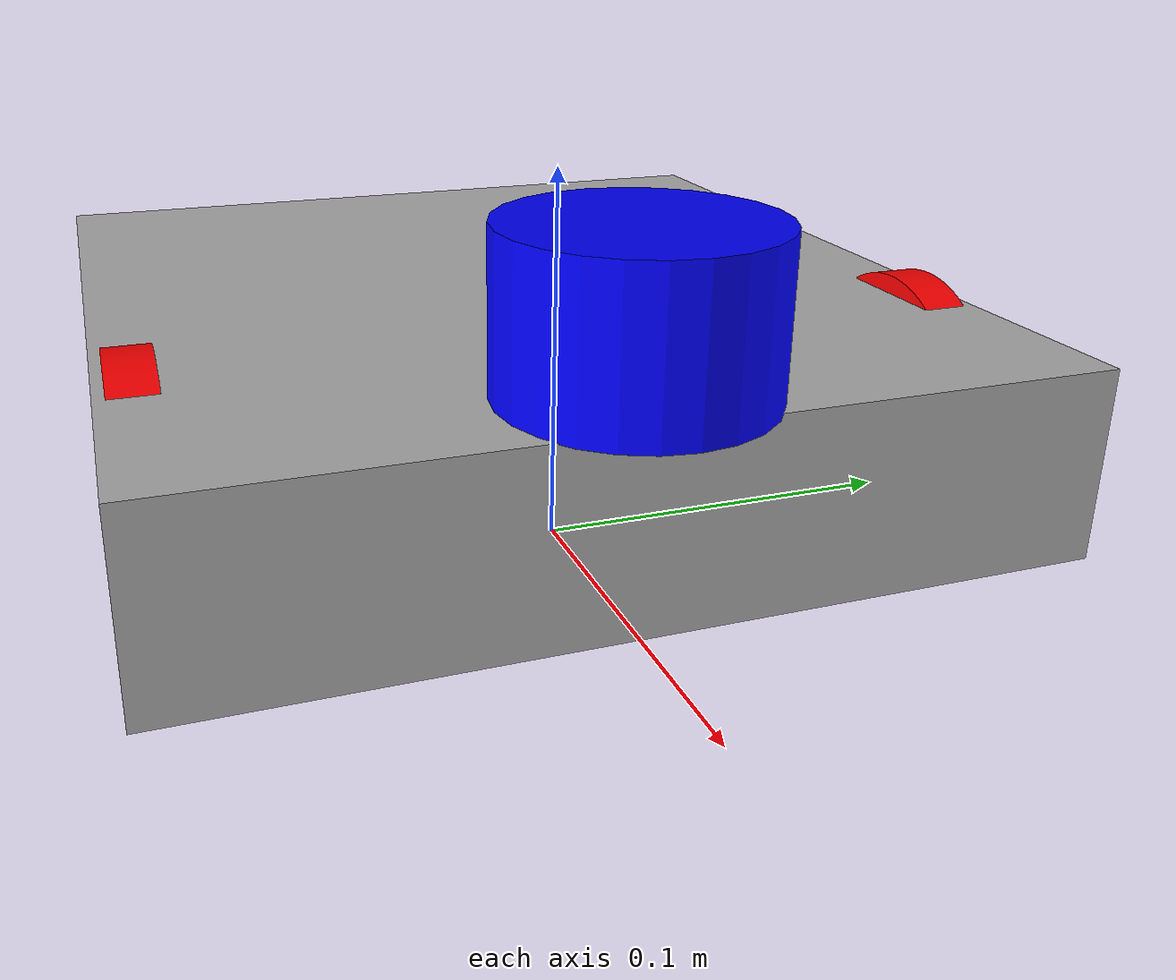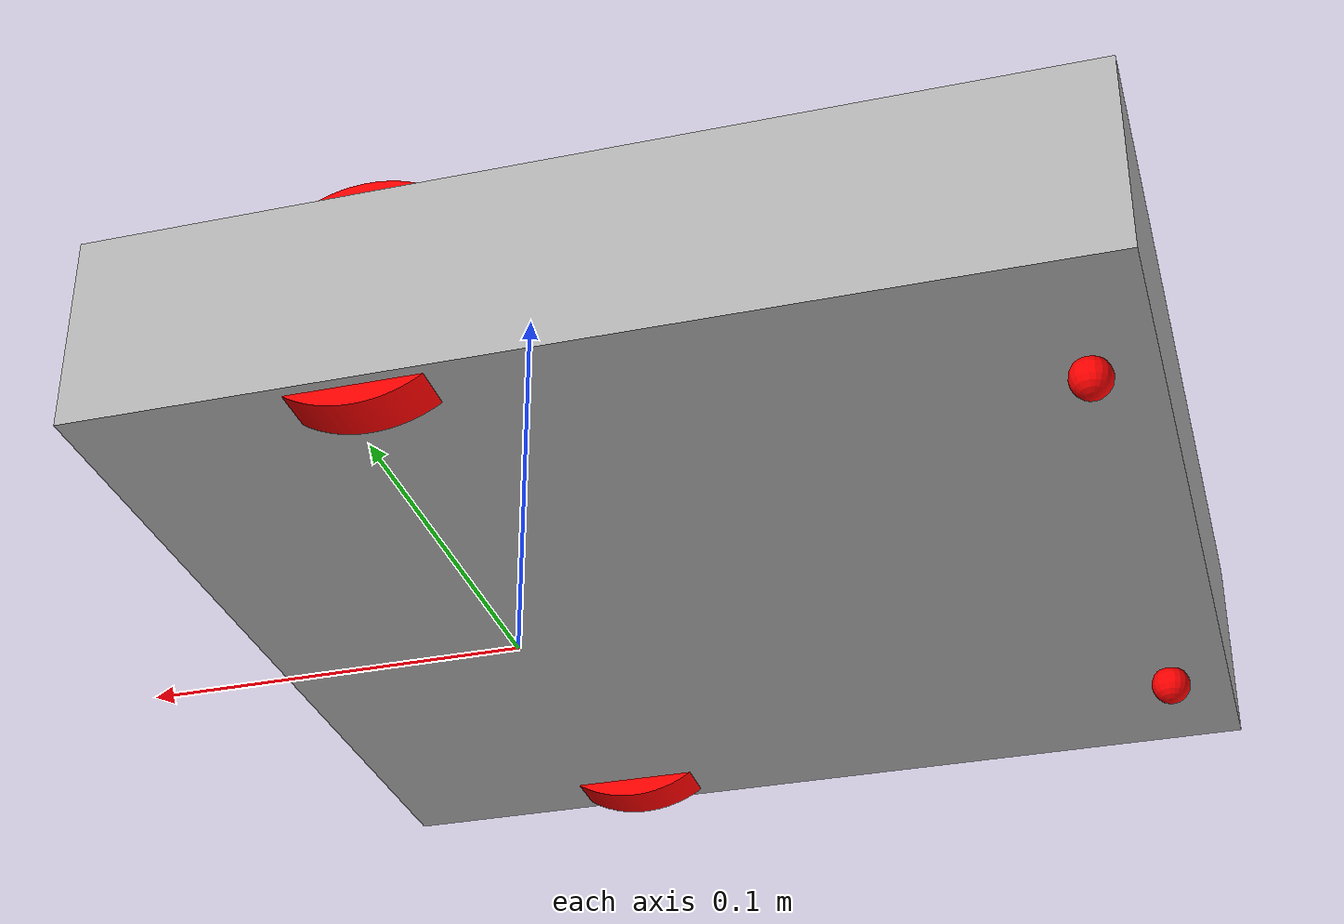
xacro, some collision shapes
<?xml version="1.0"?>
<robot name="F11Robot" xmlns:xacro="http://ros.org/wiki/xacro">
	<xacro:include filename="$(find F11Robo)/xacro/lidar.xacro" />
	<xacro:include filename="$(find F11Robo)/xacro/imu.xacro" />

	<material name="gray">
		<color rgba="0.7 0.7 0.7 2.5"/>
	</material>
	<material name="red">
		<color rgba="1.0 0.0 0.0 2.5"/>
	</material>
	<material name="blue">
		<color rgba="0.0 0.0 1.0 2.5"/>
	</material>

	<xacro:macro name="wheel_macro" params="parent prefix xyz deg　*joint_axis">
		<joint name="${prefix}_joint" type="continuous">
			<origin xyz="${xyz}" rpy="0 0 ${radians(deg)}"/>
			<parent link="${parent}"/>
			<child  link="${prefix}_link"/>
			<insert_block name="joint_axis"/>
		</joint>
		<transmission name="${prefix}_trans">
			<type>transmission_interface/SimpleTransmission</type>
			<joint name="${prefix}_joint">
				<hardwareInterface>hardware_interface/VelocityJointInterface</hardwareInterface>
			</joint>
			<actuator name="${prefix}_motor">
				<hardwareInterface>hardware_interface/VelocityJointInterface</hardwareInterface>
				<mechanismReduction>1</mechanismReduction>
			</actuator>
		</transmission>
		<link name="${prefix}_link">
			<inertial>
				<origin xyz="0 0 0" rpy="0 0 0"/>
				<mass value="0.2"/>
				<inertia ixx="0.0001" ixy="0.0" ixz="0.0" iyy="0.0001" iyz="0.0" izz="0.0001"/>
			</inertial>
			<visual>
				<origin xyz="0 0 0" rpy="0 0 0"/>
				<geometry>
					<mesh filename="package://F11Robo/stl/Robo_wheel.stl"/>
				</geometry>
				<material name="red"/>
			</visual>
			<collision>
				<origin xyz="0 0 0" rpy="${radians(90)} 0 0"/>
				<geometry>
					<cylinder radius="0.03336" length="0.011" />
				</geometry>
			</collision>
		</link>
		<gazebo reference="${prefix}_link">
			<material>Gazebo/Red</material>
			<mu1 value="3.0" />
			<mu2 value="3.0" />
			<kp value="50000" />
			<kd value="10" />
		</gazebo>
	</xacro:macro>

	<xacro:macro name="ball_macro" params="prefix xyz">
		<joint name="${prefix}_joint" type="fixed">
			<origin xyz="${xyz}" rpy="0 0 0"/>
			<parent link="base_link"/>
			<child  link="${prefix}_link"/>
		</joint>
		<link name="${prefix}_link">
			<visual>
				<origin xyz="0 0 0" rpy="0 0 0" />
				<geometry>
					<sphere radius="0.005" />
				</geometry>
				<material name="red"/>
			</visual>
			<collision>
				<origin xyz="0 0 0" rpy="0 0 0" />
				<geometry>
					<sphere radius="0.005" />
				</geometry>
				<material name="red" />
			</collision>
		</link>
		<gazebo reference="${prefix}_link">
			<material>Gazebo/Red</material>
			<mu1 value="0.0" />
			<mu2 value="0.0" />
			<mass value="0.1" />
			<inertia ixx="0.0001" ixy="0.0" ixz="0.0" iyy="0.0001" iyz="0.0" izz="0.0001"/>
		</gazebo>
	</xacro:macro>

	<link name="base_link"/>

	<joint name="body_joint" type="fixed">
		<parent link="base_link"/>
		<child  link="body_link"/>
		<origin xyz="0 0 0.0033" rpy="0 0 0"/>
	</joint>
	<link name="body_link">
		<inertial>
			<origin xyz="-0.05 0 0.03" rpy="0 0 0" />
			<mass value="1.0"/>
			<inertia ixx="0.001" ixy="0.0" ixz="0.0" iyy="0.001" iyz="0.0" izz="0.001"/>
		</inertial>
		<visual>
			<origin xyz="0 0 0" rpy="0 0 0" />
			<geometry>
				<mesh filename="package://F11Robo/stl/Robo_body.stl"/>
			</geometry>
			<material name="gray" />
		</visual>
		<collision>
			<origin xyz="-0.05 0 0.03" rpy="0 0 0" />
			<geometry>
				<box size="0.24 0.23 0.05" />
			</geometry>
		</collision>
	</link>
	<gazebo reference="body_link">
		<material>Gazebo/Gray</material>
		<mu1>0.05</mu1>
		<mu2>0.05</mu2>
	</gazebo>

	<xacro:wheel_macro prefix="left_wheel"  parent="base_link" xyz="0 0.1 0.03335" deg="180">
		<axis xyz="0 -1 0"/>
	</xacro:wheel_macro>
	<xacro:wheel_macro prefix="right_wheel" parent="base_link" xyz="0 -0.1 0.03335" deg="0">
		<axis xyz="0 1 0"/>
	</xacro:wheel_macro>

	<xacro:ball_macro prefix="left_ball" xyz="-0.155 0.0755 0.005"/>
	<xacro:ball_macro prefix="right_ball" xyz="-0.155 -0.0755 0.005"/>

	<xacro:laser_macro prefix="laser" parent="base_link" xyz="0.05 0 0.078"/>
	<xacro:imu_macro prefix="imu" parent="base_link" xyz="-0.152 0 0.05"/>

	<gazebo>
		<plugin name="gazebo_ros_control" filename="libgazebo_ros_control.so">
		<robotNamespace>/F11Robo</robotNamespace>
		<robotSimType>gazebo_ros_control/DefaultRobotHWSim</robotSimType>
		<legacyModeNS>true</legacyModeNS>
		</plugin>
	</gazebo>
	<gazebo>
		<plugin name="ground_truth" filename="libgazebo_ros_p3d.so">
		<frameName>world</frameName>
		<bodyName>base_link</bodyName>
		<topicName>/tracker</topicName>
		<updateRate>10.0</updateRate>
		</plugin>
	</gazebo>
</robot>

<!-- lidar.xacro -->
<robot name="F11Robot" xmlns:xacro="http://ros.org/wiki/xacro">
	<xacro:macro name="laser_macro" params="parent prefix xyz">
		<joint name="${prefix}_joint" type="fixed">
		<parent link="${parent}"/>
		<child  link="${prefix}_link"/>
		<origin xyz="${xyz}" rpy="0 0 0"/>
		</joint>
		<link name="${prefix}_link">
		<visual>
			<origin xyz="0 0 0" rpy="0 0 0" />
			<geometry>
			<cylinder radius="0.0329" length="0.04" />
			</geometry>
			<material name="blue" />
		</visual>
		<collision>
			<origin xyz="0 0 0" rpy="0 0 0"/>
			<geometry>
			<cylinder radius="0.0329" length="0.04" />
			</geometry>
		</collision>
		</link>
		<gazebo reference="${prefix}_link">
		<material>Gazebo/Blue</material>
		<sensor type="ray" name="${prefix}">
			<pose>0 0 0 0 0 0</pose>
			<visualize>false</visualize>
			<update_rate>10</update_rate>
			<ray>
			<scan>
				<horizontal>
				<samples>400</samples>
				<resolution>1</resolution>
				<min_angle>${radians(-180)}</min_angle>
				<max_angle>${radians(180)}</max_angle>
				</horizontal>
			</scan>
			<range>
				<min>0.10</min>
				<max>20.0</max>
				<resolution>0.01</resolution>
			</range>
			<noise>
				<type>gaussian</type>
				<mean>0.0</mean>
				<stddev>0.01</stddev>
			</noise>
			</ray>
			<plugin name="gazebo_ros_lidar_controller" filename="libgazebo_ros_laser.so">
			<topicName>/${prefix}_link/scan</topicName>
			<frameName>${prefix}_link</frameName>
			</plugin>
		</sensor>
		</gazebo>
	</xacro:macro>
</robot>

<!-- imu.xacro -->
<robot name="dtw_robot" xmlns:xacro="http://ros.org/wiki/xacro">
  <xacro:macro name="imu_macro" params="parent prefix xyz">
    <joint name="imu_joint" type="fixed">
      <parent link="${parent}"/>
      <child  link="${prefix}_link"/>
      <origin xyz="${xyz}" rpy="0 0 0"/>
    </joint>
    <link name="${prefix}_link">
      <visual>
        <origin xyz="0 0 0" rpy="0 0 0" />
        <geometry>
          <box size="0.015 0.025 0.005" />
        </geometry>
        <material name="blue" />
      </visual>
    </link>
    <gazebo reference="${prefix}_link">
      <gravity>true</gravity>
      <sensor name="imu_sensor" type="imu">
        <always_on>true</always_on>
        <update_rate>100</update_rate>
        <visualize>true</visualize>
        <topic>data</topic>
        <plugin filename="libgazebo_ros_imu_sensor.so" name="imu_plugin">
          <topicName>${prefix}/data</topicName>
          <bodyName>${prefix}_link</bodyName>
          <updateRateHZ>10.0</updateRateHZ>
          <gaussianNoise>0.0</gaussianNoise>
          <xyzOffset>0 0 0</xyzOffset>
          <rpyOffset>0 0 0</rpyOffset>
          <frameName>${prefix}_link</frameName>
        </plugin>
        <pose>0 0 0 0 0 0</pose>
      </sensor>
    </gazebo>
  </xacro:macro>
</robot>
